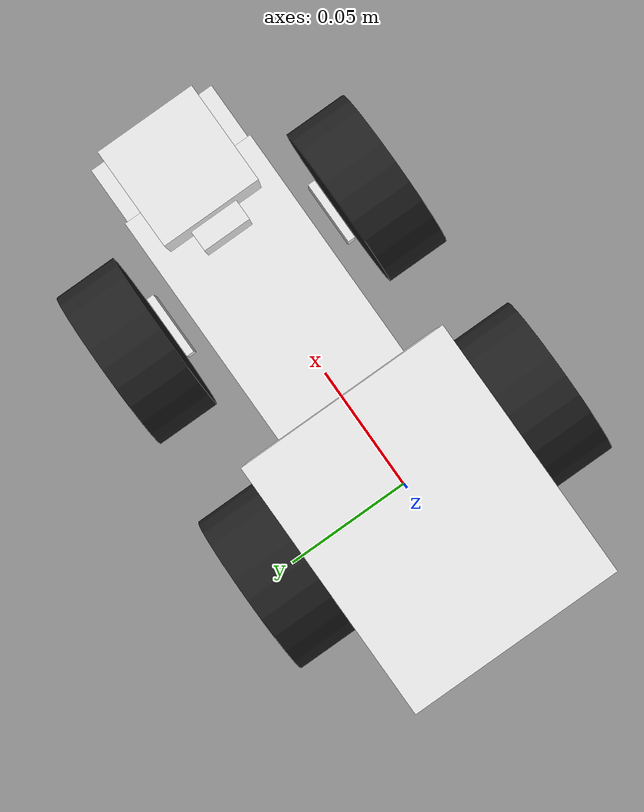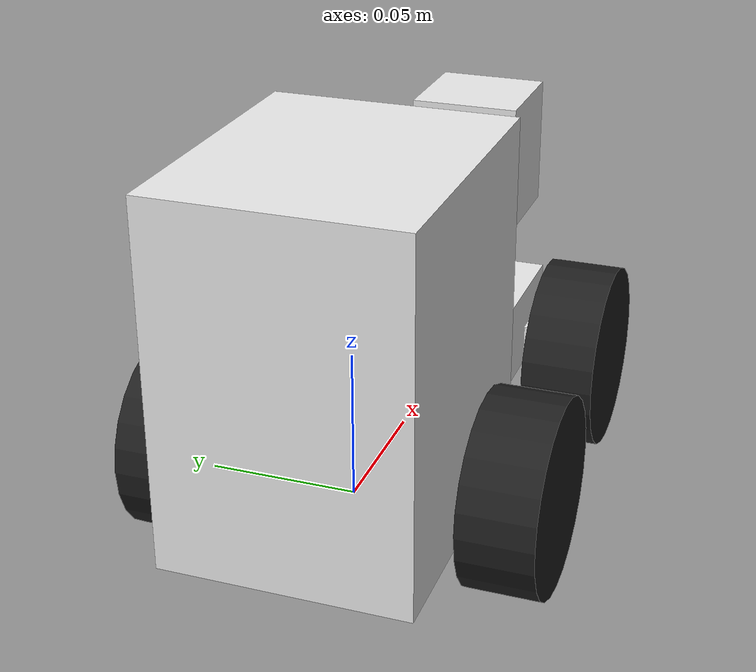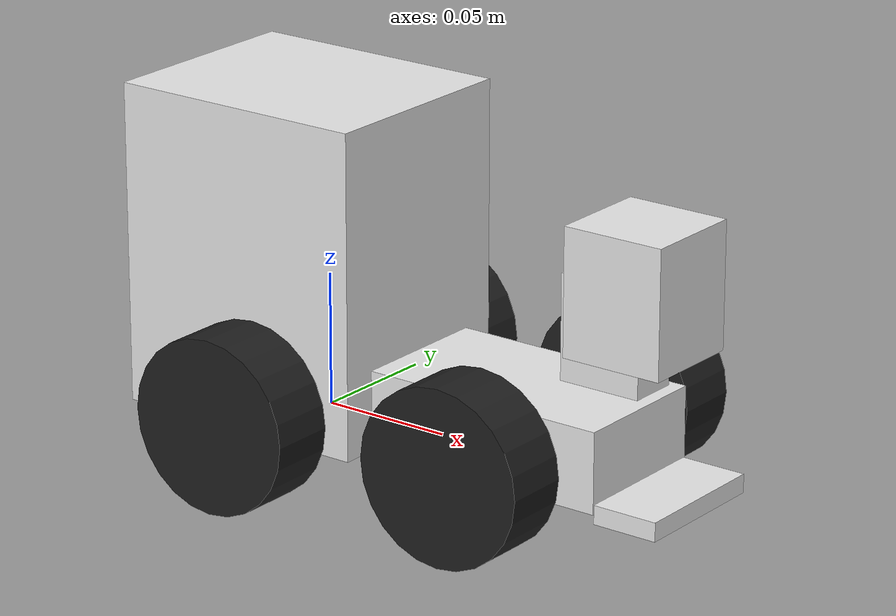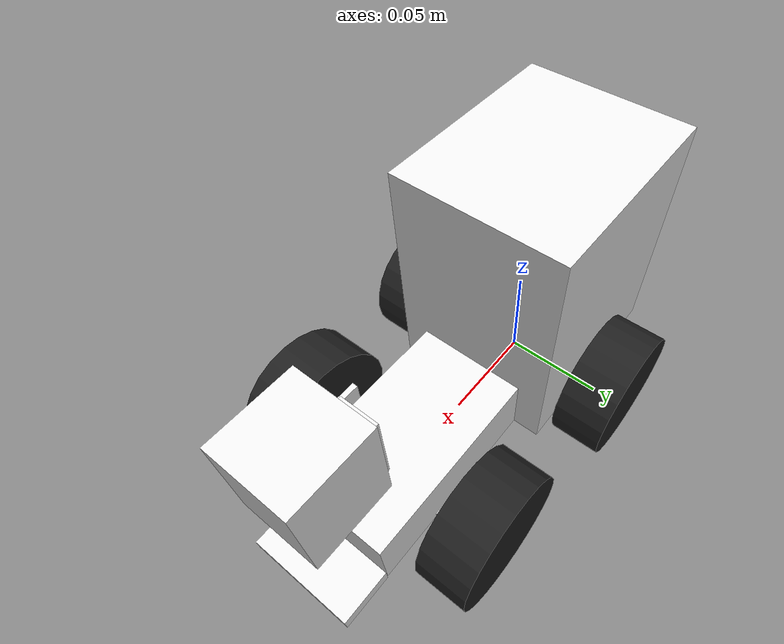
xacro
<?xml version="1.0"?>
<robot xmlns:xacro="http://www.ros.org/wiki/xacro"  name="robot">

    <xacro:include filename="inertial_macros.xacro" />
    <xacro:include filename="colors.xacro" />

    <xacro:include filename="robot_core.xacro" />

    <xacro:include filename="ros2_control.xacro" />

</robot>

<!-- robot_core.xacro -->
<robot xmlns:xacro="http://www.ros.org/wiki/xacro">

    <link name="base_link"></link>

    <!-- Chassis back and front parts -->

    <xacro:property name="chassis_back_length" value="0.1"/>
    <xacro:property name="chassis_back_width" value="0.082"/>
    <xacro:property name="chassis_back_height" value="0.12"/>
    <xacro:property name="chassis_back_mass" value="0.2"/>

    <xacro:property name="chassis_front_length" value="0.095"/>
    <xacro:property name="chassis_front_width" value="0.055"/>
    <xacro:property name="chassis_front_height" value="0.03"/>
    <xacro:property name="chassis_front_mass" value="0.1"/>

    <!-- Chassis steering parts -->

    <xacro:property name="chassis_steer_length" value="0.025"/>
    <xacro:property name="chassis_steer_width" value="0.003"/>
    <xacro:property name="chassis_steer_height" value="0.025"/>
    <xacro:property name="chassis_steer_mass" value="0.01"/>

    <xacro:property name="chassis_steer_offset_x" value="0.048"/>
    <xacro:property name="chassis_steer_offset_y" value="${chassis_front_width/2 + 0.008}"/>
    <xacro:property name="chassis_steer_offset_z" value="0.015"/>

    <xacro:property name="steer_turnlimit" value="${pi/6}"/>

    <!-- Wheel parts -->

    <xacro:property name="wheel_radius" value="0.0325"/>
    <xacro:property name="wheel_thickness" value="0.025"/>
    <xacro:property name="wheel_mass" value="0.02"/>

    <xacro:property name="drive_wheel_offset_x" value="0.06"/>
    <xacro:property name="drive_wheel_offset_y" value="${chassis_back_width/2 + wheel_thickness/2 + 0.003}"/>
    <xacro:property name="drive_wheel_offset_z" value="0.012"/>

    <xacro:property name="steer_wheel_offset_x" value="0.008"/>
    <xacro:property name="steer_wheel_offset_y" value="${wheel_thickness/2 + chassis_steer_width}"/>
    <xacro:property name="steer_wheel_offset_z" value="0"/>

    <!-- Camera tower parts -->

    <xacro:property name="camera_pan_length" value="0.032"/>
    <xacro:property name="camera_pan_width" value="0.019"/>
    <xacro:property name="camera_pan_height" value="0.039"/>
    <xacro:property name="camera_pan_mass" value="0.05"/>

    <xacro:property name="camera_pan_offset_x" value="${chassis_front_length - 0.005}"/>
    <xacro:property name="camera_pan_offset_y" value="0"/>
    <xacro:property name="camera_pan_offset_z" value="${chassis_front_height + 0.007}"/>

    <xacro:property name="camera_tilt_length" value="0.039"/>
    <xacro:property name="camera_tilt_width" value="0.039"/>
    <xacro:property name="camera_tilt_height" value="0.047"/>
    <xacro:property name="camera_tilt_mass" value="0.05"/>

    <xacro:property name="camera_tilt_offset_x" value="0"/>
    <xacro:property name="camera_tilt_offset_y" value="0"/>
    <xacro:property name="camera_tilt_offset_z" value="0.03"/>

    <xacro:property name="camera_turnlimit" value="${pi/6}"/>

    <!-- Grayscale sensor block -->

    <xacro:property name="grayscale_block_length" value="0.025"/>
    <xacro:property name="grayscale_block_width" value="0.054"/>
    <xacro:property name="grayscale_block_height" value="0.007"/>
    <xacro:property name="grayscale_block_mass" value="0.02"/>

    <xacro:property name="grayscale_block_offset_x" value="${chassis_front_length + grayscale_block_length/2}"/>
    <xacro:property name="grayscale_block_offset_y" value="0"/>
    <xacro:property name="grayscale_block_offset_z" value="0"/>

    <!-- Joints and links -->

    <!-- Chassis back -->

    <joint name="chassis_back_joint" type="fixed">
        <parent link="base_link" />
        <child link="chassis_back" />
        <origin xyz="-${drive_wheel_offset_x} 0 0" />
    </joint>

    <link name="chassis_back">
        <visual>
            <origin xyz="${chassis_back_length / 2} 0 ${chassis_back_height/2}" rpy="0 0 0" />
            <geometry>
                <box size="${chassis_back_length} ${chassis_back_width} ${chassis_back_height}" />
            </geometry>
            <material name="white" />
        </visual>
        <collision>
            <origin xyz="${chassis_back_length / 2} 0 ${chassis_back_height/2}" rpy="0 0 0" />
            <geometry>
                <box size="${chassis_back_length} ${chassis_back_width} ${chassis_back_height}" />
            </geometry>
        </collision>
        <xacro:inertial_box mass="${chassis_back_mass}" x="${chassis_back_length}" y="${chassis_back_width}" z="${chassis_back_height}">
            <origin xyz="${chassis_back_length / 2} 0 ${chassis_back_height/2}" rpy="0 0 0" />
        </xacro:inertial_box>
    </link>
    <gazebo reference="chassis_back">
        <material>Gazebo/White</material>
    </gazebo>

    <!-- Chassis front -->

    <joint name="chassis_front_joint" type="fixed">
        <parent link="chassis_back" />
        <child link="chassis_front" />
        <origin xyz="${chassis_back_length} 0 0" />
    </joint>

    <link name="chassis_front">
        <visual>
            <origin xyz="${chassis_front_length/2} 0 ${chassis_front_height/2}" rpy="0 0 0" />
            <geometry>
                <box size="${chassis_front_length} ${chassis_front_width} ${chassis_front_height}" />
            </geometry>
            <material name="white" />
        </visual>
        <collision>
            <origin xyz="${chassis_front_length/2} 0 ${chassis_front_height/2}" rpy="0 0 0" />
            <geometry>
                <box size="${chassis_front_length} ${chassis_front_width} ${chassis_front_height}" />
            </geometry>
        </collision>
        <xacro:inertial_box mass="${chassis_front_mass}" x="${chassis_front_length}" y="${chassis_front_width}" z="${chassis_front_height}">
            <origin xyz="${chassis_front_length / 2} 0 ${chassis_front_height/2}" rpy="0 0 0" />
        </xacro:inertial_box>
    </link>
    <gazebo reference="chassis_front">
        <material>Gazebo/White</material>
    </gazebo>

    <!-- Drive wheel left -->

    <joint name="left_drive_wheel_joint" type="continuous">
        <parent link="chassis_back" />
        <child link="left_drive_wheel" />
        <origin xyz="${drive_wheel_offset_x} ${drive_wheel_offset_y} ${drive_wheel_offset_z}" rpy="-${pi/2} 0 0" />
        <axis xyz="0 0 1" />
    </joint>

    <link name="left_drive_wheel">
        <visual>
            <geometry>
                <cylinder length="${wheel_thickness}" radius="${wheel_radius}" />
            </geometry>
            <material name="black" />
        </visual>
        <collision>
            <geometry>
                <sphere radius="${wheel_radius}" />
            </geometry>
        </collision>
        <xacro:inertial_cylinder mass="${wheel_mass}" length="${wheel_thickness}" radius="${wheel_radius}">
            <origin xyz="0 0 0" rpy="0 0 0"/>
        </xacro:inertial_cylinder>
    </link>
    <gazebo reference="left_drive_wheel">
        <material>Gazebo/Black</material>
    </gazebo>

    <!-- Drive wheel right -->

    <joint name="right_drive_wheel_joint" type="continuous">
        <mimic joint="left_drive_wheel_joint"/>
        <parent link="chassis_back" />
        <child link="right_drive_wheel" />
        <origin xyz="${drive_wheel_offset_x} -${drive_wheel_offset_y} ${drive_wheel_offset_z}" rpy="${pi/2} 0 0" />
        <axis xyz="0 0 -1" />
    </joint>

    <link name="right_drive_wheel">
        <visual>
            <geometry>
                <cylinder length="${wheel_thickness}" radius="${wheel_radius}" />
            </geometry>
            <material name="black" />
        </visual>
        <collision>
            <geometry>
                <sphere radius="${wheel_radius}" />
            </geometry>
        </collision>
        <xacro:inertial_cylinder mass="${wheel_mass}" length="${wheel_thickness}" radius="${wheel_radius}">
            <origin xyz="0 0 0" rpy="0 0 0"/>
        </xacro:inertial_cylinder>
    </link>
    <gazebo reference="right_drive_wheel">
        <material>Gazebo/Black</material>
    </gazebo>

    <!-- Chassis steer left -->

    <joint name="left_chassis_steer_joint" type="revolute">
        <parent link="chassis_front" />
        <child link="left_chassis_steer" />
        <origin xyz="${chassis_steer_offset_x} ${chassis_steer_offset_y} ${chassis_steer_offset_z}" />
        <axis xyz="0 0 1" />
        <limit lower="-${steer_turnlimit}" upper="${steer_turnlimit}" velocity="100" effort="10000" />
    </joint>

    <link name="left_chassis_steer">
        <visual>
            <origin xyz="${steer_wheel_offset_x} 0 0" />
            <geometry>
                <box size="${chassis_steer_length} ${chassis_steer_width} ${chassis_steer_height}" />
            </geometry>
            <material name="white" />
        </visual>
        <collision>
            <origin xyz="${steer_wheel_offset_x} 0 0" />
            <geometry>
                <box size="${chassis_steer_length} ${chassis_steer_width} ${chassis_steer_height}" />
            </geometry>
        </collision>
        <xacro:inertial_box mass="${chassis_steer_mass}" x="${chassis_steer_length}" y="${chassis_steer_width}" z="${chassis_steer_height}">
            <origin xyz="${steer_wheel_offset_x} 0 0" rpy="0 0 0" />
        </xacro:inertial_box>
    </link>
    <gazebo reference="left_chassis_steer">
        <material>Gazebo/White</material>
    </gazebo>

    <!-- Chassis steer right -->

    <joint name="right_chassis_steer_joint" type="revolute">
        <mimic joint="left_chassis_steer_joint"/>
        <parent link="chassis_front" />
        <child link="right_chassis_steer" />
        <origin xyz="${chassis_steer_offset_x} -${chassis_steer_offset_y} ${chassis_steer_offset_z}" />
        <axis xyz="0 0 1" />
        <limit lower="-${steer_turnlimit}" upper="${steer_turnlimit}" velocity="100" effort="10000" />
    </joint>

    <link name="right_chassis_steer">
        <visual>
            <origin xyz="${steer_wheel_offset_x} 0 0" />
            <geometry>
                <box size="${chassis_steer_length} ${chassis_steer_width} ${chassis_steer_height}" />
            </geometry>
            <material name="white" />
        </visual>
        <collision>
            <origin xyz="${steer_wheel_offset_x} 0 0" />
            <geometry>
                <box size="${chassis_steer_length} ${chassis_steer_width} ${chassis_steer_height}" />
            </geometry>
        </collision>
        <xacro:inertial_box mass="${chassis_steer_mass}" x="${chassis_steer_length}" y="${chassis_steer_width}" z="${chassis_steer_height}">
            <origin xyz="${steer_wheel_offset_x} 0 0" rpy="0 0 0" />
        </xacro:inertial_box>
    </link>
    <gazebo reference="right_chassis_steer">
        <material>Gazebo/White</material>
    </gazebo>

    <!-- Steer wheel left -->

    <joint name="left_steer_wheel_joint" type="continuous">
        <parent link="left_chassis_steer" />
        <child link="left_steer_wheel" />
        <origin xyz="${steer_wheel_offset_x} ${steer_wheel_offset_y} ${steer_wheel_offset_z}" rpy="-${pi/2} 0 0" />
        <axis xyz="0 0 1" />
    </joint>

    <link name="left_steer_wheel">
        <visual>
            <geometry>
                <cylinder length="${wheel_thickness}" radius="${wheel_radius}" />
            </geometry>
            <material name="black" />
        </visual>
        <collision>
            <geometry>
                <sphere radius="${wheel_radius}" />
            </geometry>
        </collision>
        <xacro:inertial_cylinder mass="${wheel_mass}" length="${wheel_thickness}" radius="${wheel_radius}">
            <origin xyz="0 0 0" rpy="0 0 0"/>
        </xacro:inertial_cylinder>
    </link>
    <gazebo reference="left_steer_wheel">
        <material>Gazebo/Black</material>
    </gazebo>

    <!-- Steer wheel right -->

    <joint name="right_steer_wheel_joint" type="continuous">
        <parent link="right_chassis_steer" />
        <child link="right_steer_wheel" />
        <origin xyz="${steer_wheel_offset_x} -${steer_wheel_offset_y} ${steer_wheel_offset_z}" rpy="${pi/2} 0 0" />
        <axis xyz="0 0 -1" />
    </joint>

    <link name="right_steer_wheel">
        <visual>
            <geometry>
                <cylinder length="${wheel_thickness}" radius="${wheel_radius}" />
            </geometry>
            <material name="black" />
        </visual>
        <collision>
            <geometry>
                <sphere radius="${wheel_radius}" />
            </geometry>
        </collision>
        <xacro:inertial_cylinder mass="${wheel_mass}" length="${wheel_thickness}" radius="${wheel_radius}">
            <origin xyz="0 0 0" rpy="0 0 0"/>
        </xacro:inertial_cylinder>
    </link>
    <gazebo reference="right_steer_wheel">
        <material>Gazebo/Black</material>
    </gazebo>

    <!-- Camera tower pan -->

    <joint name="camera_pan_joint" type="revolute">
        <parent link="chassis_front" />
        <child link="camera_pan" />
        <origin xyz="${camera_pan_offset_x} ${camera_pan_offset_y} ${camera_pan_offset_z}" rpy="0 0 0" />
        <axis xyz="0 0 1" />
        <limit lower="-${camera_turnlimit}" upper="${camera_turnlimit}" velocity="100" effort="100" />
    </joint>

    <link name="camera_pan">
        <visual>
            <origin xyz="${-0.022 + camera_pan_length/2} 0 ${camera_pan_height/2}" />
            <geometry>
                <box size="${camera_pan_length} ${camera_pan_width} ${camera_pan_height}" />
            </geometry>
            <material name="white" />
        </visual>
        <collision>
            <origin xyz="${-0.022 + camera_pan_length/2} 0 ${camera_pan_height/2}" />
            <geometry>
                <box size="${camera_pan_length} ${camera_pan_width} ${camera_pan_height}" />
            </geometry>
        </collision>
        <xacro:inertial_box mass="${camera_pan_mass}" x="${camera_pan_length}" y="${camera_pan_width}" z="${camera_pan_height}">
            <origin xyz="${-0.022 + camera_pan_length/2} 0 ${camera_pan_height/2}" />
        </xacro:inertial_box>
    </link>
    <gazebo reference="camera_pan">
        <material>Gazebo/White</material>
    </gazebo>

    <joint name="camera_tilt_joint" type="revolute">
        <parent link="camera_pan" />
        <child link="camera_tilt" />
        <origin xyz="${camera_tilt_offset_x} ${camera_tilt_offset_y} ${camera_tilt_offset_z}" rpy="0 0 0" />
        <axis xyz="0 -1 0" />
        <limit lower="-${camera_turnlimit}" upper="${camera_turnlimit}" velocity="100" effort="100" />
    </joint>

    <link name="camera_tilt">
        <visual>
            <origin xyz="${-0.014 + camera_tilt_length/2} 0 ${-0.017 + camera_tilt_height/2}" />
            <geometry>
                <box size="${camera_tilt_length} ${camera_tilt_width} ${camera_tilt_height}" />
            </geometry>
            <material name="white" />
        </visual>
        <collision>
            <origin xyz="${-0.014 + camera_tilt_length/2} 0 ${-0.017 + camera_tilt_height/2}" />
            <geometry>
                <box size="${camera_tilt_length} ${camera_tilt_width} ${camera_tilt_height}" />
            </geometry>
        </collision>
        <xacro:inertial_box mass="${camera_tilt_mass}" x="${camera_tilt_length}" y="${camera_tilt_width}" z="${camera_tilt_height}">
            <origin xyz="${-0.014 + camera_tilt_length/2} 0 ${-0.017 + camera_tilt_height/2}" />
        </xacro:inertial_box>
    </link>
    <gazebo reference="camera_tilt">
        <material>Gazebo/White</material>
    </gazebo>

    <!-- Grayscale sensor block -->

    <joint name="grayscale_block_joint" type="fixed">
        <parent link="chassis_front" />
        <child link="grayscale_block" />
        <origin xyz="${grayscale_block_offset_x} ${grayscale_block_offset_y} ${grayscale_block_offset_z}" rpy="0 0 0" />
    </joint>

    <link name="grayscale_block">
        <visual>
            <geometry>
                <box size="${grayscale_block_length} ${grayscale_block_width} ${grayscale_block_height}" />
            </geometry>
            <material name="white" />
        </visual>
        <collision>
            <geometry>
                <box size="${grayscale_block_length} ${grayscale_block_width} ${grayscale_block_height}" />
            </geometry>
        </collision>
        <xacro:inertial_box mass="${grayscale_block_mass}" x="${grayscale_block_length}" y="${grayscale_block_width}" z="${grayscale_block_height}">
            <origin xyz="0 0 0" />
        </xacro:inertial_box>
    </link>
    <gazebo reference="grayscale_block">
        <material>Gazebo/White</material>
    </gazebo>

</robot>
